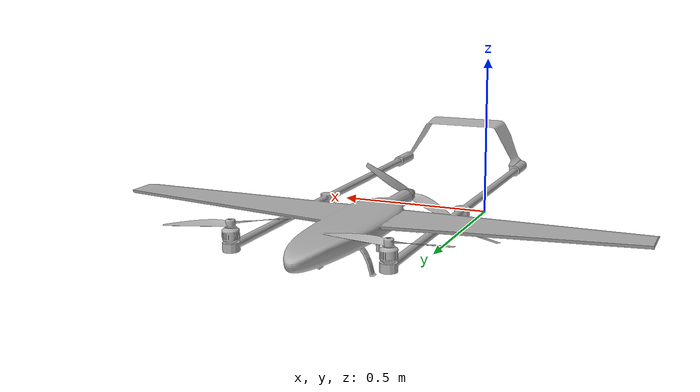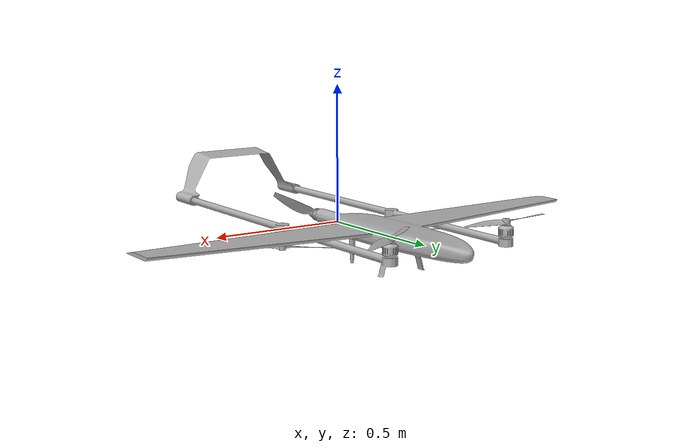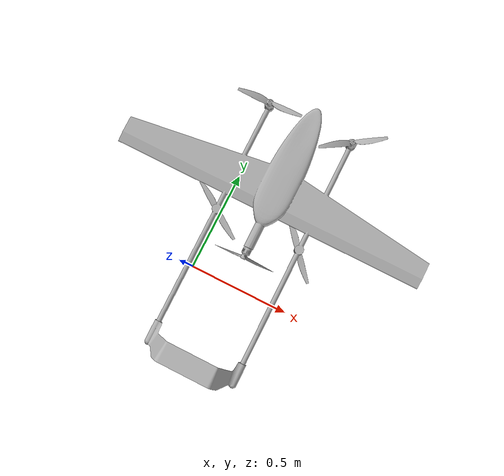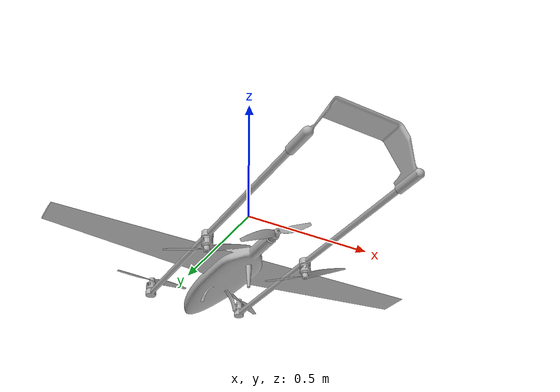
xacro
<?xml version="1.0" ?>
<robot name="yoonsewon" xmlns:xacro="http://www.ros.org/wiki/xacro">

<xacro:include filename="$(find yoonsewon_description)/urdf/materials.xacro" />
<xacro:include filename="$(find yoonsewon_description)/urdf/yoonsewon.trans" />
<xacro:include filename="$(find yoonsewon_description)/urdf/yoonsewon.gazebo" />
<link name="base_link">
  <inertial>
    <origin xyz="0.2048172438463916 0.5237278515907052 0.08201638480100135" rpy="0 0 0"/>
    <mass value="9.256673612924148"/>
    <inertia ixx="0.418621" iyy="0.634233" izz="1.048893" ixy="-0.000337" iyz="0.000423" ixz="2.8e-05"/>
  </inertial>
  <visual>
    <origin xyz="0 0 0" rpy="0 0 0"/>
    <geometry>
      <mesh filename="package://yoonsewon_description/meshes/base_link.stl" scale="0.001 0.001 0.001"/>
    </geometry>
    <material name="silver"/>
  </visual>
  <collision>
    <origin xyz="0 0 0" rpy="0 0 0"/>
    <geometry>
      <mesh filename="package://yoonsewon_description/meshes/base_link.stl" scale="0.001 0.001 0.001"/>
    </geometry>
  </collision>
</link>

<link name="motor_v1_1">
  <inertial>
    <origin xyz="-4.839509504181438e-07 3.918150555115574e-07 -0.021724105831364887" rpy="0 0 0"/>
    <mass value="0.05852628730136243"/>
    <inertia ixx="1.5e-05" iyy="1.5e-05" izz="1.3e-05" ixy="-0.0" iyz="0.0" ixz="-0.0"/>
  </inertial>
  <visual>
    <origin xyz="0.01668 -0.296981 -0.06493" rpy="0 0 0"/>
    <geometry>
      <mesh filename="package://yoonsewon_description/meshes/motor_v1_1.stl" scale="0.001 0.001 0.001"/>
    </geometry>
    <material name="silver"/>
  </visual>
  <collision>
    <origin xyz="0.01668 -0.296981 -0.06493" rpy="0 0 0"/>
    <geometry>
      <mesh filename="package://yoonsewon_description/meshes/motor_v1_1.stl" scale="0.001 0.001 0.001"/>
    </geometry>
  </collision>
</link>

<link name="motor_v1__1__1">
  <inertial>
    <origin xyz="2.4292782574431016e-07 3.918150148773947e-07 -0.02172410583136445" rpy="0 0 0"/>
    <mass value="0.05852628730136243"/>
    <inertia ixx="1.5e-05" iyy="1.5e-05" izz="1.3e-05" ixy="-0.0" iyz="0.0" ixz="-0.0"/>
  </inertial>
  <visual>
    <origin xyz="-0.425468 -0.296981 -0.06493" rpy="0 0 0"/>
    <geometry>
      <mesh filename="package://yoonsewon_description/meshes/motor_v1__1__1.stl" scale="0.001 0.001 0.001"/>
    </geometry>
    <material name="silver"/>
  </visual>
  <collision>
    <origin xyz="-0.425468 -0.296981 -0.06493" rpy="0 0 0"/>
    <geometry>
      <mesh filename="package://yoonsewon_description/meshes/motor_v1__1__1.stl" scale="0.001 0.001 0.001"/>
    </geometry>
  </collision>
</link>

<link name="motor_v1__2__1">
  <inertial>
    <origin xyz="2.4292744760234797e-07 2.601037856209132e-07 0.021724261441448622" rpy="0 0 0"/>
    <mass value="0.05852628730136243"/>
    <inertia ixx="1.5e-05" iyy="1.5e-05" izz="1.3e-05" ixy="-0.0" iyz="0.0" ixz="-0.0"/>
  </inertial>
  <visual>
    <origin xyz="-0.425468 -0.865228 -0.08933" rpy="0 0 0"/>
    <geometry>
      <mesh filename="package://yoonsewon_description/meshes/motor_v1__2__1.stl" scale="0.001 0.001 0.001"/>
    </geometry>
    <material name="silver"/>
  </visual>
  <collision>
    <origin xyz="-0.425468 -0.865228 -0.08933" rpy="0 0 0"/>
    <geometry>
      <mesh filename="package://yoonsewon_description/meshes/motor_v1__2__1.stl" scale="0.001 0.001 0.001"/>
    </geometry>
  </collision>
</link>

<link name="motor_v1__3__1">
  <inertial>
    <origin xyz="-4.839514688298463e-07 2.601034713167749e-07 0.021724261441448248" rpy="0 0 0"/>
    <mass value="0.05852628730136243"/>
    <inertia ixx="1.5e-05" iyy="1.5e-05" izz="1.3e-05" ixy="-0.0" iyz="-0.0" ixz="-0.0"/>
  </inertial>
  <visual>
    <origin xyz="0.01668 -0.865228 -0.08933" rpy="0 0 0"/>
    <geometry>
      <mesh filename="package://yoonsewon_description/meshes/motor_v1__3__1.stl" scale="0.001 0.001 0.001"/>
    </geometry>
    <material name="silver"/>
  </visual>
  <collision>
    <origin xyz="0.01668 -0.865228 -0.08933" rpy="0 0 0"/>
    <geometry>
      <mesh filename="package://yoonsewon_description/meshes/motor_v1__3__1.stl" scale="0.001 0.001 0.001"/>
    </geometry>
  </collision>
</link>

<link name="motor2_v1_1">
  <inertial>
    <origin xyz="-1.2051151535019677e-07 -0.01995018890125902 3.1915735547449753e-07" rpy="0 0 0"/>
    <mass value="0.04532760237460443"/>
    <inertia ixx="1e-05" iyy="8e-06" izz="1e-05" ixy="-0.0" iyz="-0.0" ixz="0.0"/>
  </inertial>
  <visual>
    <origin xyz="-0.204394 -0.196572 -0.076661" rpy="0 0 0"/>
    <geometry>
      <mesh filename="package://yoonsewon_description/meshes/motor2_v1_1.stl" scale="0.001 0.001 0.001"/>
    </geometry>
    <material name="silver"/>
  </visual>
  <collision>
    <origin xyz="-0.204394 -0.196572 -0.076661" rpy="0 0 0"/>
    <geometry>
      <mesh filename="package://yoonsewon_description/meshes/motor2_v1_1.stl" scale="0.001 0.001 0.001"/>
    </geometry>
  </collision>
</link>

<link name="profeller_1350_v1_1">
  <inertial>
    <origin xyz="1.819620451447798 0.32072524408078307 -0.07514680253907399" rpy="0 0 0"/>
    <mass value="0.01689409412325324"/>
    <inertia ixx="1e-06" iyy="5.2e-05" izz="5.3e-05" ixy="-1e-06" iyz="0.0" ixz="-0.0"/>
  </inertial>
  <visual>
    <origin xyz="1.834902 -0.544557 -0.215692" rpy="0 0 0"/>
    <geometry>
      <mesh filename="package://yoonsewon_description/meshes/profeller_1350_v1_1.stl" scale="0.001 0.001 0.001"/>
    </geometry>
    <material name="silver"/>
  </visual>
  <collision>
    <origin xyz="1.834902 -0.544557 -0.215692" rpy="0 0 0"/>
    <geometry>
      <mesh filename="package://yoonsewon_description/meshes/profeller_1350_v1_1.stl" scale="0.001 0.001 0.001"/>
    </geometry>
  </collision>
</link>

<link name="profeller_1350_v1__2__1">
  <inertial>
    <origin xyz="-1.0090401475123467 1.7427246844552697 -0.04163980253907425" rpy="0 0 0"/>
    <mass value="0.01689409412325324"/>
    <inertia ixx="1.8e-05" iyy="3.5e-05" izz="5.3e-05" ixy="2.4e-05" iyz="-0.0" ixz="0.0"/>
  </inertial>
  <visual>
    <origin xyz="-0.9912 1.444959 -0.058634" rpy="0 0 0"/>
    <geometry>
      <mesh filename="package://yoonsewon_description/meshes/profeller_1350_v1__2__1.stl" scale="0.001 0.001 0.001"/>
    </geometry>
    <material name="silver"/>
  </visual>
  <collision>
    <origin xyz="-0.9912 1.444959 -0.058634" rpy="0 0 0"/>
    <geometry>
      <mesh filename="package://yoonsewon_description/meshes/profeller_1350_v1__2__1.stl" scale="0.001 0.001 0.001"/>
    </geometry>
  </collision>
</link>

<link name="profeller_1350_v1__3__1">
  <inertial>
    <origin xyz="-0.25352015005843626 1.6035870253492162 -0.0421548025390739" rpy="0 0 0"/>
    <mass value="0.01689409412325324"/>
    <inertia ixx="3.1e-05" iyy="2.3e-05" izz="5.3e-05" ixy="2.5e-05" iyz="-0.0" ixz="0.0"/>
  </inertial>
  <visual>
    <origin xyz="-0.678062 1.305556 -0.058634" rpy="0 0 0"/>
    <geometry>
      <mesh filename="package://yoonsewon_description/meshes/profeller_1350_v1__3__1.stl" scale="0.001 0.001 0.001"/>
    </geometry>
    <material name="silver"/>
  </visual>
  <collision>
    <origin xyz="-0.678062 1.305556 -0.058634" rpy="0 0 0"/>
    <geometry>
      <mesh filename="package://yoonsewon_description/meshes/profeller_1350_v1__3__1.stl" scale="0.001 0.001 0.001"/>
    </geometry>
  </collision>
</link>

<link name="profeller_1480_v1_1">
  <inertial>
    <origin xyz="-0.9063261119491344 0.018091728521597378 -1.4489643108148564" rpy="0 0 0"/>
    <mass value="0.020359256171264842"/>
    <inertia ixx="1.6e-05" iyy="7.3e-05" izz="5.8e-05" ixy="-0.0" iyz="-0.0" ixz="-2.8e-05"/>
  </inertial>
  <visual>
    <origin xyz="-1.109376 -0.12983 -1.52492" rpy="0 0 0"/>
    <geometry>
      <mesh filename="package://yoonsewon_description/meshes/profeller_1480_v1_1.stl" scale="0.001 0.001 0.001"/>
    </geometry>
    <material name="silver"/>
  </visual>
  <collision>
    <origin xyz="-1.109376 -0.12983 -1.52492" rpy="0 0 0"/>
    <geometry>
      <mesh filename="package://yoonsewon_description/meshes/profeller_1480_v1_1.stl" scale="0.001 0.001 0.001"/>
    </geometry>
  </collision>
</link>

<link name="profeller_1350_v1__1__1">
  <inertial>
    <origin xyz="0.0011634836447337316 0.0007792373525745688 0.011897197460926406" rpy="0 0 0"/>
    <mass value="0.01689409412325324"/>
    <inertia ixx="1.6e-05" iyy="3.7e-05" izz="5.3e-05" ixy="-2.3e-05" iyz="-0.0" ixz="-0.0"/>
  </inertial>
  <visual>
    <origin xyz="-0.425468 -0.865228 -0.129448" rpy="0 0 0"/>
    <geometry>
      <mesh filename="package://yoonsewon_description/meshes/profeller_1350_v1__1__1.stl" scale="0.001 0.001 0.001"/>
    </geometry>
    <material name="silver"/>
  </visual>
  <collision>
    <origin xyz="-0.425468 -0.865228 -0.129448" rpy="0 0 0"/>
    <geometry>
      <mesh filename="package://yoonsewon_description/meshes/profeller_1350_v1__1__1.stl" scale="0.001 0.001 0.001"/>
    </geometry>
  </collision>
</link>

<link name="tail_v1_1">
  <inertial>
    <origin xyz="-0.42296819185358203 -0.613794025567939 -0.02257370288866689" rpy="0 0 0"/>
    <mass value="0.4550748977110902"/>
    <inertia ixx="0.002474" iyy="0.014714" izz="0.013426" ixy="-5e-06" iyz="0.000673" ixz="9.4e-05"/>
  </inertial>
  <visual>
    <origin xyz="-0.629862 -0.224219 -0.174019" rpy="0 0 0"/>
    <geometry>
      <mesh filename="package://yoonsewon_description/meshes/tail_v1_1.stl" scale="0.001 0.001 0.001"/>
    </geometry>
    <material name="silver"/>
  </visual>
  <collision>
    <origin xyz="-0.629862 -0.224219 -0.174019" rpy="0 0 0"/>
    <geometry>
      <mesh filename="package://yoonsewon_description/meshes/tail_v1_1.stl" scale="0.001 0.001 0.001"/>
    </geometry>
  </collision>
</link>

<joint name="joint2" type="continuous">
  <origin xyz="-0.01668 0.296981 0.06493" rpy="0 0 0"/>
  <parent link="base_link"/>
  <child link="motor_v1_1"/>
  <axis xyz="-0.0 -0.0 -1.0"/>
</joint>

<joint name="joint3" type="continuous">
  <origin xyz="0.425468 0.296981 0.06493" rpy="0 0 0"/>
  <parent link="base_link"/>
  <child link="motor_v1__1__1"/>
  <axis xyz="-0.0 -0.0 -1.0"/>
</joint>

<joint name="joint4" type="continuous">
  <origin xyz="0.425468 0.865228 0.08933" rpy="0 0 0"/>
  <parent link="base_link"/>
  <child link="motor_v1__2__1"/>
  <axis xyz="0.0 0.0 1.0"/>
</joint>

<joint name="joint5" type="continuous">
  <origin xyz="-0.01668 0.865228 0.08933" rpy="0 0 0"/>
  <parent link="base_link"/>
  <child link="motor_v1__3__1"/>
  <axis xyz="0.0 0.0 1.0"/>
</joint>

<joint name="joint6" type="continuous">
  <origin xyz="0.204394 0.196572 0.076661" rpy="0 0 0"/>
  <parent link="base_link"/>
  <child link="motor2_v1_1"/>
  <axis xyz="-0.0 -1.0 0.0"/>
</joint>

<joint name="joint7" type="fixed">
  <origin xyz="-1.818222 -0.320671 0.126362" rpy="0 0 0"/>
  <parent link="motor_v1__3__1"/>
  <child link="profeller_1350_v1_1"/>
</joint>

<joint name="joint9" type="fixed">
  <origin xyz="1.00788 -1.74194 -0.006296" rpy="0 0 0"/>
  <parent link="motor_v1_1"/>
  <child link="profeller_1350_v1__2__1"/>
</joint>

<joint name="joint10" type="fixed">
  <origin xyz="0.252594 -1.602537 -0.006296" rpy="0 0 0"/>
  <parent link="motor_v1__1__1"/>
  <child link="profeller_1350_v1__3__1"/>
</joint>

<joint name="joint11" type="fixed">
  <origin xyz="0.904982 -0.066742 1.448259" rpy="0 0 0"/>
  <parent link="motor2_v1_1"/>
  <child link="profeller_1480_v1_1"/>
</joint>

<joint name="joint12" type="fixed">
  <origin xyz="0.0 0.0 0.040118" rpy="0 0 0"/>
  <parent link="motor_v1__2__1"/>
  <child link="profeller_1350_v1__1__1"/>
</joint>

<joint name="joint13" type="fixed">
  <origin xyz="0.629862 0.224219 0.174019" rpy="0 0 0"/>
  <parent link="base_link"/>
  <child link="tail_v1_1"/>
</joint>

</robot>

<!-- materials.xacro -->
<robot name="yoonsewon" xmlns:xacro="http://www.ros.org/wiki/xacro" >

<material name="silver">
  <color rgba="0.700 0.700 0.700 1.000"/>
</material>

</robot>

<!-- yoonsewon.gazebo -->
<robot name="yoonsewon" xmlns:xacro="http://www.ros.org/wiki/xacro" >

<xacro:property name="body_color" value="Gazebo/Silver" />

<gazebo>
  <plugin name="control" filename="libgazebo_ros_control.so"/>
</gazebo>
<gazebo reference="base_link">
  <material>${body_color}</material>
  <mu1>0.2</mu1>
  <mu2>0.2</mu2>
  <selfCollide>true</selfCollide>
  <gravity>true</gravity>
</gazebo>

<gazebo reference="motor_v1_1">
  <material>${body_color}</material>
  <mu1>0.2</mu1>
  <mu2>0.2</mu2>
  <selfCollide>true</selfCollide>
</gazebo>

<gazebo reference="motor_v1__1__1">
  <material>${body_color}</material>
  <mu1>0.2</mu1>
  <mu2>0.2</mu2>
  <selfCollide>true</selfCollide>
</gazebo>

<gazebo reference="motor_v1__2__1">
  <material>${body_color}</material>
  <mu1>0.2</mu1>
  <mu2>0.2</mu2>
  <selfCollide>true</selfCollide>
</gazebo>

<gazebo reference="motor_v1__3__1">
  <material>${body_color}</material>
  <mu1>0.2</mu1>
  <mu2>0.2</mu2>
  <selfCollide>true</selfCollide>
</gazebo>

<gazebo reference="motor2_v1_1">
  <material>${body_color}</material>
  <mu1>0.2</mu1>
  <mu2>0.2</mu2>
  <selfCollide>true</selfCollide>
</gazebo>

<gazebo reference="profeller_1350_v1_1">
  <material>${body_color}</material>
  <mu1>0.2</mu1>
  <mu2>0.2</mu2>
  <selfCollide>true</selfCollide>
</gazebo>

<gazebo reference="profeller_1350_v1__2__1">
  <material>${body_color}</material>
  <mu1>0.2</mu1>
  <mu2>0.2</mu2>
  <selfCollide>true</selfCollide>
</gazebo>

<gazebo reference="profeller_1350_v1__3__1">
  <material>${body_color}</material>
  <mu1>0.2</mu1>
  <mu2>0.2</mu2>
  <selfCollide>true</selfCollide>
</gazebo>

<gazebo reference="profeller_1480_v1_1">
  <material>${body_color}</material>
  <mu1>0.2</mu1>
  <mu2>0.2</mu2>
  <selfCollide>true</selfCollide>
</gazebo>

<gazebo reference="profeller_1350_v1__1__1">
  <material>${body_color}</material>
  <mu1>0.2</mu1>
  <mu2>0.2</mu2>
  <selfCollide>true</selfCollide>
</gazebo>

<gazebo reference="tail_v1_1">
  <material>${body_color}</material>
  <mu1>0.2</mu1>
  <mu2>0.2</mu2>
  <selfCollide>true</selfCollide>
</gazebo>

</robot>
